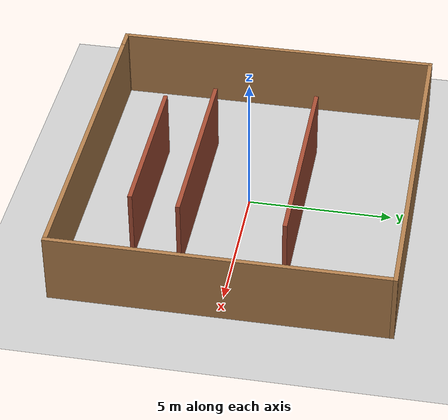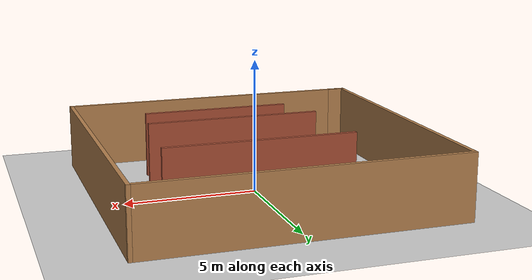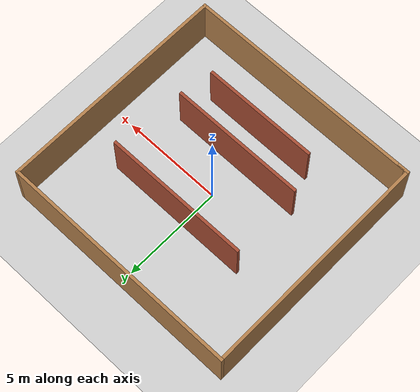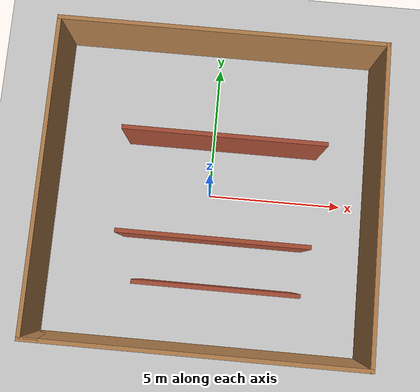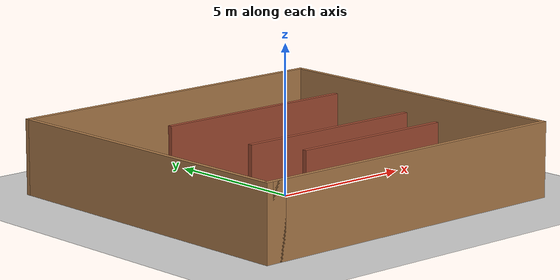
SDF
<sdf version="1.7">
 <world name="default">
  <light name="sun" type="directional">
   <pose>0 0 10 0 -0 0</pose>
   <diffuse>0.8 0.8 0.8 1</diffuse>
   <specular>0.2 0.2 0.2 1</specular>
   <attenuation>
    <range>1000</range>
    <constant>0.9</constant>
    <linear>0.01</linear>
    <quadratic>0.001</quadratic>
   </attenuation>
   <direction>-0.5 0.1 -0.9</direction>
   <spot><inner_angle>0</inner_angle><outer_angle>0</outer_angle><falloff>0</falloff></spot>
  </light>
  <model name="ground_plane">
   <static>1</static>
   <link name="link">
    <collision name="collision">
     <geometry><plane><normal>0 0 1</normal><size>100 100</size></plane></geometry>
     <surface>
      <contact><collide_bitmask>65535</collide_bitmask></contact>
      <friction><ode><mu>100</mu><mu2>50</mu2></ode></friction>
     </surface>
    </collision>
    <visual name="visual">
     <cast_shadows>0</cast_shadows>
     <geometry><plane><normal>0 0 1</normal><size>100 100</size></plane></geometry>
     <material>
      <script><uri>file://media/materials/scripts/gazebo.material</uri><name>Gazebo/Grey</name></script>
     </material>
    </visual>
   </link>
  </model>
  <gravity>0 0 -9.8</gravity>
  <magnetic_field>6e-06 2.3e-05 -4.2e-05</magnetic_field>
  <atmosphere type="adiabatic"/>
  <physics type="ode">
   <max_step_size>0.001</max_step_size>
   <real_time_factor>1</real_time_factor>
   <real_time_update_rate>1000</real_time_update_rate>
  </physics>
  <scene><ambient>0.4 0.4 0.4 1</ambient><background>0.7 0.7 0.7 1</background><shadows>1</shadows></scene>
  <spherical_coordinates>
   <surface_model>EARTH_WGS84</surface_model>
   <latitude_deg>0</latitude_deg>
   <longitude_deg>0</longitude_deg>
   <elevation>0</elevation>
   <heading_deg>0</heading_deg>
  </spherical_coordinates>
  <model name="TD3_22">
   <link name="Wall_3">
    <collision name="Wall_3_Collision">
     <geometry><box><size>11.75 0.15 2.5</size></box></geometry>
     <pose>0 0 1.25 0 -0 0</pose>
    </collision>
    <visual name="Wall_3_Visual">
     <pose>0 0 1.25 0 -0 0</pose>
     <geometry><box><size>11.75 0.15 2.5</size></box></geometry>
     <material>
      <script><uri>file://media/materials/scripts/gazebo.material</uri><name>Gazebo/Wood</name></script>
      <ambient>1 1 1 1</ambient>
     </material>
     <meta><layer>0</layer></meta>
    </visual>
    <pose>0.125 -5.675 0 0 -0 0</pose>
   </link>
   <link name="Wall_4">
    <collision name="Wall_4_Collision">
     <geometry><box><size>11.5 0.15 2.5</size></box></geometry>
     <pose>0 0 1.25 0 -0 0</pose>
    </collision>
    <visual name="Wall_4_Visual">
     <pose>0 0 1.25 0 -0 0</pose>
     <geometry><box><size>11.5 0.15 2.5</size></box></geometry>
     <material>
      <script><uri>file://media/materials/scripts/gazebo.material</uri><name>Gazebo/Wood</name></script>
      <ambient>1 1 1 1</ambient>
     </material>
     <meta><layer>0</layer></meta>
    </visual>
    <pose>5.925 -0 0 0 -0 1.5708</pose>
   </link>
   <link name="Wall_5">
    <collision name="Wall_5_Collision">
     <geometry><box><size>12 0.15 2.5</size></box></geometry>
     <pose>0 0 1.25 0 -0 0</pose>
    </collision>
    <visual name="Wall_5_Visual">
     <pose>0 0 1.25 0 -0 0</pose>
     <geometry><box><size>12 0.15 2.5</size></box></geometry>
     <material>
      <script><uri>file://media/materials/scripts/gazebo.material</uri><name>Gazebo/Wood</name></script>
      <ambient>1 1 1 1</ambient>
     </material>
     <meta><layer>0</layer></meta>
    </visual>
    <pose>0 5.675 0 0 -0 3.14159</pose>
   </link>
   <link name="Wall_6">
    <collision name="Wall_6_Collision">
     <geometry><box><size>11.5 0.15 2.5</size></box></geometry>
     <pose>0 0 1.25 0 -0 0</pose>
    </collision>
    <visual name="Wall_6_Visual">
     <pose>0 0 1.25 0 -0 0</pose>
     <geometry><box><size>11.5 0.15 2.5</size></box></geometry>
     <material>
      <script><uri>file://media/materials/scripts/gazebo.material</uri><name>Gazebo/Wood</name></script>
      <ambient>1 1 1 1</ambient>
     </material>
     <meta><layer>0</layer></meta>
    </visual>
    <pose>-5.925 -0 0 0 -0 -1.5708</pose>
   </link>
   <link name="Wall_7">
    <collision name="Wall_7_Collision">
     <geometry><box><size>0.75 0.15 2.5</size></box></geometry>
     <pose>0 0 1.25 0 -0 0</pose>
    </collision>
    <visual name="Wall_7_Visual">
     <pose>0 0 1.25 0 -0 0</pose>
     <geometry><box><size>0.75 0.15 2.5</size></box></geometry>
     <material>
      <script><uri>file://media/materials/scripts/gazebo.material</uri><name>Gazebo/Wood</name></script>
      <ambient>1 1 1 1</ambient>
     </material>
     <meta><layer>0</layer></meta>
    </visual>
    <pose>-5.625 -5.675 0 0 -0 0</pose>
   </link>
   <static>1</static>
  </model>
  <model name="world3">
   <pose>0.366821 -0.795733 0 0 -0 0</pose>
   <link name="Wall_14">
    <collision name="Wall_14_Collision">
     <geometry><box><size>5.75 0.15 2.5</size></box></geometry>
     <pose>0 0 1.25 0 -0 0</pose>
    </collision>
    <visual name="Wall_14_Visual">
     <pose>0 0 1.25 0 -0 0</pose>
     <geometry><box><size>5.75 0.15 2.5</size></box></geometry>
     <material>
      <script><uri>file://media/materials/scripts/gazebo.material</uri><name>Gazebo/Bricks</name></script>
      <ambient>1 1 1 1</ambient>
     </material>
     <meta><layer>0</layer></meta>
    </visual>
    <pose>0.132608 -2.6506 0 0 -0 0</pose>
   </link>
   <link name="Wall_17">
    <collision name="Wall_17_Collision">
     <geometry><box><size>6.75 0.15 2.5</size></box></geometry>
     <pose>0 0 1.25 0 -0 0</pose>
    </collision>
    <visual name="Wall_17_Visual">
     <pose>0 0 1.25 0 -0 0</pose>
     <geometry><box><size>6.75 0.15 2.5</size></box></geometry>
     <material>
      <script><uri>file://media/materials/scripts/gazebo.material</uri><name>Gazebo/Bricks</name></script>
      <ambient>1 1 1 1</ambient>
     </material>
     <meta><layer>0</layer></meta>
    </visual>
    <pose>-0.101262 -0.976131 0 0 -0 0</pose>
   </link>
   <link name="Wall_19">
    <collision name="Wall_19_Collision">
     <geometry><box><size>7.25 0.15 2.5</size></box></geometry>
     <pose>0 0 1.25 0 -0 0</pose>
    </collision>
    <visual name="Wall_19_Visual">
     <pose>0 0 1.25 0 -0 0</pose>
     <geometry><box><size>7.25 0.15 2.5</size></box></geometry>
     <material>
      <script><uri>file://media/materials/scripts/gazebo.material</uri><name>Gazebo/Bricks</name></script>
      <ambient>1 1 1 1</ambient>
     </material>
     <meta><layer>0</layer></meta>
    </visual>
    <pose>-0 2.6506 0 0 -0 0</pose>
   </link>
   <static>1</static>
  </model>
 </world>
</sdf>
